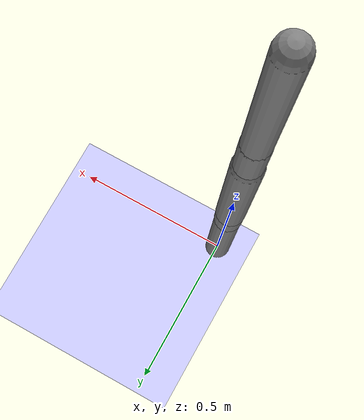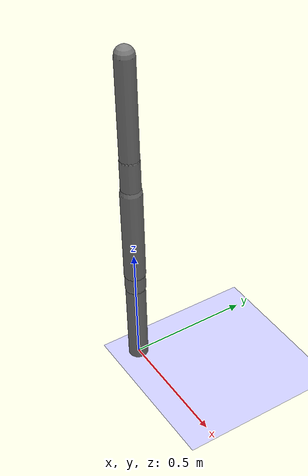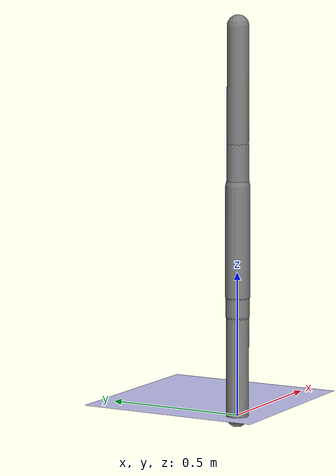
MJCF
<?xml version='1.0' encoding='UTF-8'?>
<mujoco model="robot_model">
  <worldbody>
    <light name="light" pos="0 -3 10" dir="0 0.5 -1" diffuse=".8 .8 .8" specular="0.1 0.1 0.1"/>
    <geom name="floor" type="plane" size="10.0 10.0 0.1" pos="0 0 0" rgba="0.8 0.8 1 1" contype="2" conaffinity="1"/>
    <body name="limb0" pos="0 0 0">
      <geom type="capsule" fromto="0 0 0 0 0 0.5971765578198134" size="0.04" density="868.0858006718339" contype="1" conaffinity="2"/>
      <site type="sphere" size="0.01" name="limb0_site0" pos="0 0 0.34451572049611073"/>
      <freejoint name="limb0_root"/>
      <body name="limb1" pos="0 0 0.34451572049611073">
        <geom type="capsule" fromto="0 0 0 0 0 0.11789116681523648" size="0.03350622500036012" density="601.2330562842756" contype="1" conaffinity="2"/>
        <site type="sphere" size="0.01" name="limb1_site0" pos="0 0 0.0735526269420766"/>
        <site type="sphere" size="0.01" name="limb1_site1" pos="0 0 0.0065661577480942025"/>
        <site type="sphere" size="0.01" name="limb1_site2" pos="0 0 0.09601367094402079"/>
        <body name="limb2" pos="0 0 0.0735526269420766">
          <geom type="capsule" fromto="0 0 0 0 0 0.38231057733543733" size="0.04320126958942399" density="764.0354914470512" contype="1" conaffinity="2"/>
          <joint name="joint_limb1_limb2_0" type="hinge" axis="0 1 0" range="-79.19027832141104 79.19027832141104" damping="5.0"/>
        </body>
        <body name="limb3" pos="0 0 0.0065661577480942025">
          <geom type="capsule" fromto="0 0 0 0 0 0.3449366956007403" size="0.04182995516077146" density="888.638751137447" contype="1" conaffinity="2"/>
          <site type="sphere" size="0.01" name="limb3_site0" pos="0 0 0.34476469369601037"/>
          <body name="limb4" pos="0 0 0.34476469369601037">
            <geom type="capsule" fromto="0 0 0 0 0 0.43759584017527964" size="0.03523291040596619" density="820.7923175021591" contype="1" conaffinity="2"/>
            <joint name="joint_limb3_limb4_0" type="hinge" axis="0 1 0" range="-97.60316524447805 97.60316524447805" damping="5.0"/>
          </body>
          <joint name="joint_limb1_limb3_0" type="hinge" axis="1 0 0" range="-76.57739072162552 76.57739072162552" damping="5.0"/>
        </body>
        <body name="limb5" pos="0 0 0.09601367094402079">
          <geom type="capsule" fromto="0 0 0 0 0 0.5" size="0.03926549675410116" density="1058.8769662480563" contype="1" conaffinity="2"/>
          <site type="sphere" size="0.01" name="limb5_site0" pos="0 0 0.2560745598104502"/>
          <site type="sphere" size="0.01" name="limb5_site1" pos="0 0 0.44076882258336086"/>
          <site type="sphere" size="0.01" name="limb5_site2" pos="0 0 0.25203444162184496"/>
          <body name="limb6" pos="0 0 0.2560745598104502">
            <geom type="capsule" fromto="0 0 0 0 0 0.10132629865508748" size="0.028272016099352537" density="685.6739189435759" contype="1" conaffinity="2"/>
            <joint name="joint_limb5_limb6_0" type="hinge" axis="1 0 0" range="-39.46093477322345 39.46093477322345" damping="5.0"/>
          </body>
          <body name="limb7" pos="0 0 0.44076882258336086">
            <geom type="capsule" fromto="0 0 0 0 0 0.468181343672113" size="0.038154602031658345" density="1125.5913325396152" contype="1" conaffinity="2"/>
            <joint name="joint_limb5_limb7_0" type="hinge" axis="0 1 0" range="-118.69762092772474 118.69762092772474" damping="5.0"/>
          </body>
          <body name="limb8" pos="0 0 0.25203444162184496">
            <geom type="capsule" fromto="0 0 0 0 0 0.37166349185855707" size="0.03471472421033268" density="1181.8553192277445" contype="1" conaffinity="2"/>
            <joint name="joint_limb5_limb8_0" type="hinge" axis="0 0 1" range="-106.17964630106378 106.17964630106378" damping="5.0"/>
          </body>
          <joint name="joint_limb1_limb5_0" type="hinge" axis="0 1 0" range="-100.19138469108644 100.19138469108644" damping="5.0"/>
        </body>
        <joint name="joint_limb0_limb1_0" type="hinge" axis="0 1 0" range="-118.43465417951464 118.43465417951464" damping="5.0"/>
      </body>
    </body>
  </worldbody>
  <actuator>
    <position name="position_actuator_joint_limb0_limb1_0" joint="joint_limb0_limb1_0" gear="1.3172310151340172" inheritrange="1" kp="10.0"/>
    <position name="position_actuator_joint_limb1_limb2_0" joint="joint_limb1_limb2_0" gear="1.0104857860709995" inheritrange="1" kp="10.0"/>
    <position name="position_actuator_joint_limb1_limb3_0" joint="joint_limb1_limb3_0" gear="1.9786544527946286" inheritrange="1" kp="10.0"/>
    <position name="position_actuator_joint_limb3_limb4_0" joint="joint_limb3_limb4_0" gear="1.7459471619076385" inheritrange="1" kp="10.0"/>
    <position name="position_actuator_joint_limb1_limb5_0" joint="joint_limb1_limb5_0" gear="1.233825117296027" inheritrange="1" kp="10.0"/>
    <position name="position_actuator_joint_limb5_limb6_0" joint="joint_limb5_limb6_0" gear="1.6699171564828723" inheritrange="1" kp="10.0"/>
    <position name="position_actuator_joint_limb5_limb7_0" joint="joint_limb5_limb7_0" gear="1.7310688920449273" inheritrange="1" kp="10.0"/>
    <position name="position_actuator_joint_limb5_limb8_0" joint="joint_limb5_limb8_0" gear="0.7597488265685853" inheritrange="1" kp="10.0"/>
  </actuator>
</mujoco>
